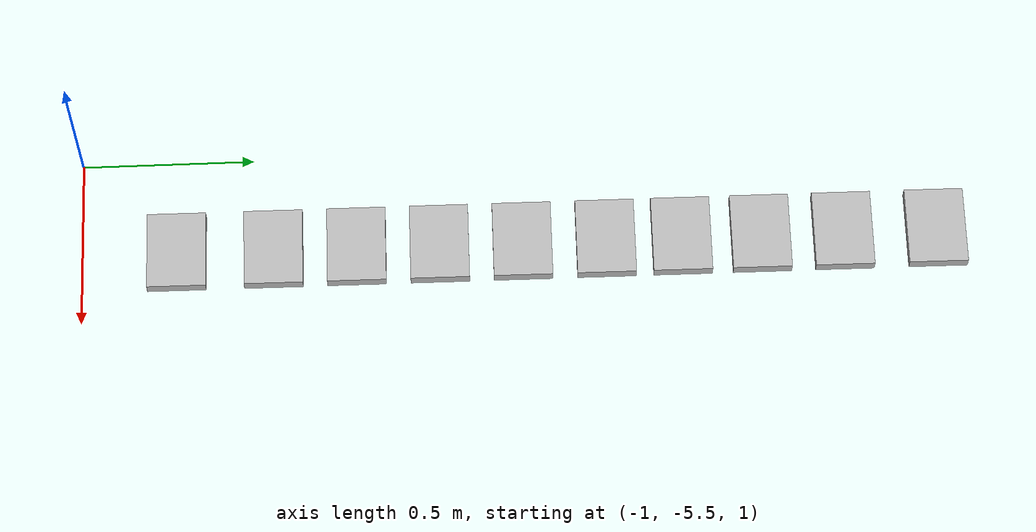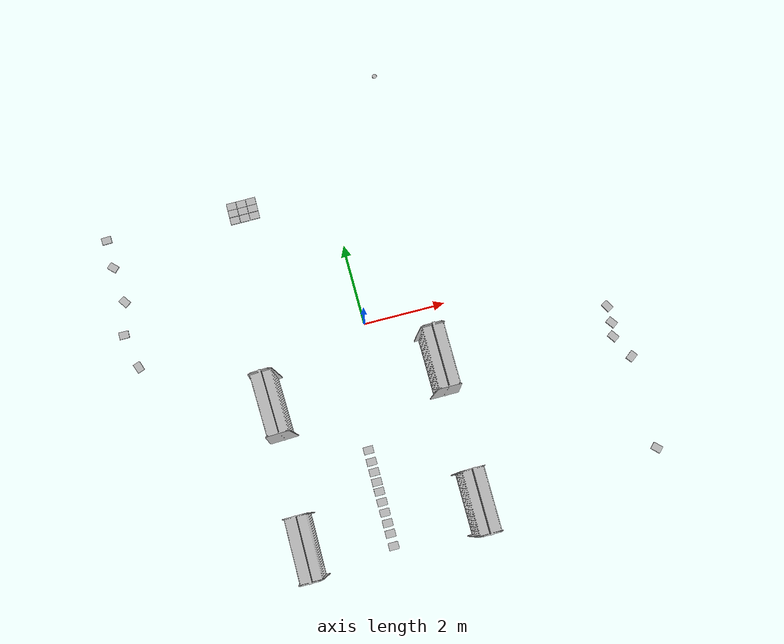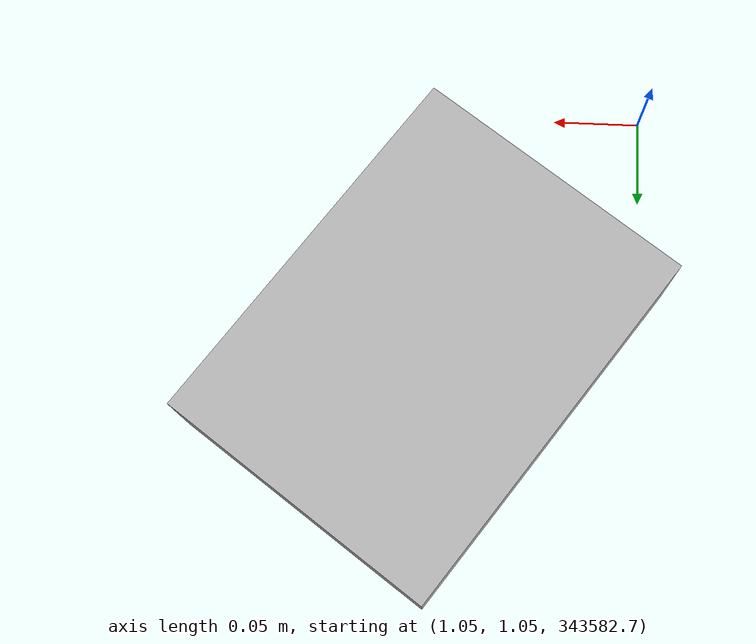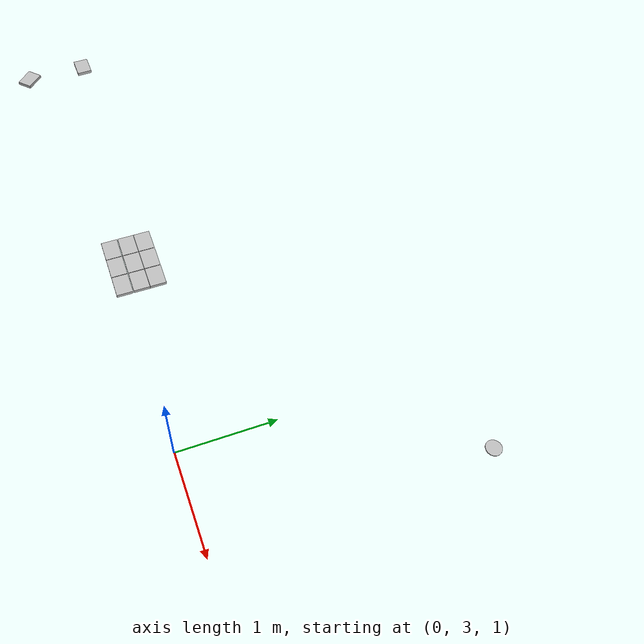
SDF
<sdf version="1.6">
 <world name="collision_test">
  <gravity>0 0 -9.8</gravity>
  <magnetic_field>6e-06 2.3e-05 -4.2e-05</magnetic_field>
  <atmosphere type="adiabatic"/>
  <physics default="0" name="default_physics" type="ode">
   <max_step_size>0.001</max_step_size>
   <real_time_factor>1</real_time_factor>
   <real_time_update_rate>1000</real_time_update_rate>
  </physics>
  <plugin name="gz::sim::systems::Physics" filename="gz-sim-physics-system"/>
  <plugin name="gz::sim::systems::UserCommands" filename="gz-sim-user-commands-system"/>
  <plugin name="gz::sim::systems::SceneBroadcaster" filename="gz-sim-scene-broadcaster-system"/>
  <plugin filename="gz-sim-sensors-system" name="gz::sim::systems::Sensors">
   <render_engine>ogre2</render_engine>
  </plugin>
  <plugin filename="gz-sim-contact-system" name="gz::sim::systems::Contact"/>
  <scene>
   <ambient>0.4 0.4 0.4 1</ambient>
   <background>0.7 0.7 0.7 1</background>
   <shadows>1</shadows>
   <grid>false</grid>
   <origin_visual>false</origin_visual>
  </scene>
  <spherical_coordinates>
   <surface_model>EARTH_WGS84</surface_model>
   <latitude_deg>0</latitude_deg>
   <longitude_deg>0</longitude_deg>
   <elevation>0</elevation>
   <heading_deg>0</heading_deg>
  </spherical_coordinates>
  <model name="sky_cam">
   <static>true</static>
   <link name="camera_link">
    <pose>0 0 18 1.57 1.57 0</pose>
    <sensor name="sky_cam" type="camera">
     <camera>
      <horizontal_fov>1.047</horizontal_fov>
      <image><width>1024</width><height>768</height></image>
      <clip><near>0.1</near><far>100</far></clip>
     </camera>
     <always_on>1</always_on>
     <update_rate>1</update_rate>
     <visualize>true</visualize>
     <topic>sky_cam</topic>
    </sensor>
   </link>
  </model>
  <model name="BookE_01_001">
   <static>true</static>
   <include><uri>models/aws_robomaker_retail_BookE_01</uri></include>
   <pose>5.476534 -1.932532 0.948933 0.000004 0.000001 -2.543521</pose>
  </model>
  <model name="BookE_01_002">
   <static>true</static>
   <include><uri>models/aws_robomaker_retail_BookE_01</uri></include>
   <pose>-5.414000 3.330672 0.934015 -0.000001 -0.000001 -1.541094</pose>
  </model>
  <model name="BookE_01_003">
   <static>true</static>
   <include><uri>models/aws_robomaker_retail_BookE_01</uri></include>
   <pose>5.552553 -1.214211 0.948933 0.000004 -0.000001 -2.654312</pose>
  </model>
  <model name="BookE_01_004">
   <static>true</static>
   <include><uri>models/aws_robomaker_retail_BookE_01</uri></include>
   <pose>5.677231 -4.649203 0.946394 0.000100 0.000006 -2.355752</pose>
  </model>
  <model name="BookE_01_005">
   <static>true</static>
   <include><uri>models/aws_robomaker_retail_BookE_01</uri></include>
   <pose>5.538150 -1.610317 0.948933 0 0 -2.526901</pose>
  </model>
  <model name="BookE_01_006">
   <static>true</static>
   <include><uri>models/aws_robomaker_retail_BookE_01</uri></include>
   <pose>-1.889425 3.346395 1.054941 0 0 1.568157</pose>
  </model>
  <model name="BookE_01_007">
   <static>true</static>
   <include><uri>models/aws_robomaker_retail_BookE_01</uri></include>
   <pose>-2.123726 3.346395 1.054941 0 0 1.568157</pose>
  </model>
  <model name="BookE_01_008">
   <static>true</static>
   <include><uri>models/aws_robomaker_retail_BookE_01</uri></include>
   <pose>-5.315121 1.771952 0.955242 3.141243 -0.072268 -2.526906</pose>
  </model>
  <model name="BookE_01_009">
   <static>true</static>
   <include><uri>models/aws_robomaker_retail_BookE_01</uri></include>
   <pose>1.170199 1.196251 343582.718718 0.002241 -0.001100 -0.623328</pose>
  </model>
  <model name="BookE_01_010">
   <static>true</static>
   <include><uri>models/aws_robomaker_retail_BookE_01</uri></include>
   <pose>-5.503415 1.012063 0.941463 0 0 -1.568440</pose>
  </model>
  <model name="BookE_01_011">
   <static>true</static>
   <include><uri>models/aws_robomaker_retail_BookE_01</uri></include>
   <pose>5.749231 -2.492018 0.948933 0.000002 0.000001 2.223394</pose>
  </model>
  <model name="BookE_01_012">
   <static>true</static>
   <include><uri>models/aws_robomaker_retail_BookE_01</uri></include>
   <pose>-5.333584 0.186186 0.949316 -0.000001 -0.004549 -2.798485</pose>
  </model>
  <model name="BookE_01_013">
   <static>true</static>
   <include><uri>models/aws_robomaker_retail_BookE_01</uri></include>
   <pose>-5.403906 2.650881 0.931119 0.021204 -0.000001 -2.355751</pose>
  </model>
  <model name="BookE_01_014">
   <static>true</static>
   <include><uri>models/aws_robomaker_retail_BookE_01</uri></include>
   <pose>-1.889425 2.993687 1.054941 0 0 1.568157</pose>
  </model>
  <model name="BookE_01_015">
   <static>true</static>
   <include><uri>models/aws_robomaker_retail_BookE_01</uri></include>
   <pose>-2.123726 2.993687 1.054941 0 0 1.568157</pose>
  </model>
  <model name="BookE_01_016">
   <static>true</static>
   <include><uri>models/aws_robomaker_retail_BookE_01</uri></include>
   <pose>-2.357369 2.993687 1.054941 0 0 1.568157</pose>
  </model>
  <model name="BookE_01_017">
   <static>true</static>
   <include><uri>models/aws_robomaker_retail_BookE_01</uri></include>
   <pose>-1.889425 3.172920 1.054941 0 0 1.568157</pose>
  </model>
  <model name="BookE_01_018">
   <static>true</static>
   <include><uri>models/aws_robomaker_retail_BookE_01</uri></include>
   <pose>-2.123726 3.172920 1.054941 0 0 1.568157</pose>
  </model>
  <model name="BookE_01_019">
   <static>true</static>
   <include><uri>models/aws_robomaker_retail_BookE_01</uri></include>
   <pose>-2.357369 3.172920 1.054941 0 0 1.568157</pose>
  </model>
  <model name="BookE_01_020">
   <static>true</static>
   <include><uri>models/aws_robomaker_retail_BookE_01</uri></include>
   <pose>-0.694312 -3.530823 1.053825 0.000004 -0.000004 -1.573382</pose>
  </model>
  <model name="BookE_01_021">
   <static>true</static>
   <include><uri>models/aws_robomaker_retail_BookE_01</uri></include>
   <pose>-0.694312 -3.760511 1.053825 0.000004 -0.000004 -1.573382</pose>
  </model>
  <model name="BookE_01_022">
   <static>true</static>
   <include><uri>models/aws_robomaker_retail_BookE_01</uri></include>
   <pose>-0.694312 -3.980472 1.053825 0.000004 -0.000004 -1.573382</pose>
  </model>
  <model name="BookE_01_023">
   <static>true</static>
   <include><uri>models/aws_robomaker_retail_BookE_01</uri></include>
   <pose>-0.694312 -4.221891 1.053825 0.000004 -0.000004 -1.573382</pose>
  </model>
  <model name="BookE_01_024">
   <static>true</static>
   <include><uri>models/aws_robomaker_retail_BookE_01</uri></include>
   <pose>-0.694312 -4.461891 1.053825 0.000004 -0.000004 -1.573382</pose>
  </model>
  <model name="BookE_01_025">
   <static>true</static>
   <include><uri>models/aws_robomaker_retail_BookE_01</uri></include>
   <pose>-0.694312 -4.701891 1.053825 0.000004 -0.000004 -1.573382</pose>
  </model>
  <model name="BookE_01_026">
   <static>true</static>
   <include><uri>models/aws_robomaker_retail_BookE_01</uri></include>
   <pose>-0.694312 -4.941891 1.053825 0.000004 -0.000004 -1.573382</pose>
  </model>
  <model name="BookE_01_027">
   <static>true</static>
   <include><uri>models/aws_robomaker_retail_BookE_01</uri></include>
   <pose>-0.694312 -5.221891 1.053825 0.000004 -0.000004 -1.573382</pose>
  </model>
  <model name="BookE_01_028">
   <static>true</static>
   <include><uri>models/aws_robomaker_retail_BookE_01</uri></include>
   <pose>-0.694312 -3.291891 1.053825 0.000004 -0.000004 -1.573382</pose>
  </model>
  <model name="BookE_01_029">
   <static>true</static>
   <include><uri>models/aws_robomaker_retail_BookE_01</uri></include>
   <pose>-0.694312 -3.021891 1.053825 0.000004 -0.000004 -1.573382</pose>
  </model>
  <model name="BookE_01_030">
   <static>true</static>
   <include><uri>models/aws_robomaker_retail_BookE_01</uri></include>
   <pose>-2.357369 3.346395 1.054941 0 0 1.568157</pose>
  </model>
  <model name="BookshelfA_01_001">
   <static>true</static>
   <include><uri>models/aws_robomaker_retail_BookshelfA_01</uri></include>
   <pose>1.405153 -1.449740 0.03755 0.003490 -0.000003 0.000696</pose>
  </model>
  <model name="BookshelfA_01_002">
   <static>true</static>
   <include><uri>models/aws_robomaker_retail_BookshelfA_01</uri></include>
   <pose>1.405153 -4.761649 0.003411 0 0 0</pose>
  </model>
  <model name="BookshelfA_01_003">
   <static>true</static>
   <include><uri>models/aws_robomaker_retail_BookshelfA_01</uri></include>
   <pose>-2.554493 -1.487456 0.006337 0.001313 -0.001987 0.031824</pose>
  </model>
  <model name="BookshelfA_01_004">
   <static>true</static>
   <include><uri>models/aws_robomaker_retail_BookshelfA_01</uri></include>
   <pose>-2.608578 -4.761649 0.003411 0 0 0</pose>
  </model>
  <model name="Spotlight_01_001">
   <static>true</static>
   <include><uri>models/aws_robomaker_retail_Spotlight_01</uri></include>
   <pose>1.493200 4.692372 3.302658 0 -0 0</pose>
  </model>
  <light name="RetailShop_CeilingLight_001" type="point">
   <pose>2.774418 -3.628150 3.178466 0 -0 0</pose>
   <diffuse>0.5 0.5 0.5 1</diffuse>
   <specular>0.1 0.1 0.1 1</specular>
   <attenuation>
    <range>20</range>
    <constant>0.32</constant>
    <linear>0.01</linear>
    <quadratic>0.03</quadratic>
   </attenuation>
   <cast_shadows>0</cast_shadows>
   <direction>0 0 -1</direction>
  </light>
  <light name="RetailShop_CeilingLight_002" type="point">
   <pose>5.383991 -5.383710 3.178466 0 -0 0</pose>
   <diffuse>0.5 0.5 0.5 1</diffuse>
   <specular>0.1 0.1 0.1 1</specular>
   <attenuation>
    <range>20</range>
    <constant>0.32</constant>
    <linear>0.01</linear>
    <quadratic>0.03</quadratic>
   </attenuation>
   <cast_shadows>0</cast_shadows>
   <direction>0 0 -1</direction>
  </light>
  <light name="RetailShop_CeilingLight_003" type="point">
   <pose>5.383991 0.041920 3.178466 0 -0 0</pose>
   <diffuse>0.5 0.5 0.5 1</diffuse>
   <specular>0.1 0.1 0.1 1</specular>
   <attenuation>
    <range>20</range>
    <constant>0.32</constant>
    <linear>0.01</linear>
    <quadratic>0.03</quadratic>
   </attenuation>
   <cast_shadows>0</cast_shadows>
   <direction>0 0 -1</direction>
  </light>
  <light name="RetailShop_CeilingLight_004" type="point">
   <pose>-3.210668 -5.383710 3.178466 0 -0 0</pose>
   <diffuse>0.5 0.5 0.5 1</diffuse>
   <specular>0.1 0.1 0.1 1</specular>
   <attenuation>
    <range>20</range>
    <constant>0.32</constant>
    <linear>0.01</linear>
    <quadratic>0.03</quadratic>
   </attenuation>
   <cast_shadows>0</cast_shadows>
   <direction>0 0 -1</direction>
  </light>
  <light name="RetailShop_CeilingLight_005" type="point">
   <pose>-3.271001 2.685925 3.178466 0 -0 0</pose>
   <diffuse>0.5 0.5 0.5 1</diffuse>
   <specular>0.1 0.1 0.1 1</specular>
   <attenuation>
    <range>20</range>
    <constant>0.32</constant>
    <linear>0.01</linear>
    <quadratic>0.03</quadratic>
   </attenuation>
   <cast_shadows>0</cast_shadows>
   <direction>0 0 -1</direction>
  </light>
  <light name="RetailShop_CeilingLight_006" type="point">
   <pose>1.493200 4.692372 3.178466 0 -0 0</pose>
   <diffuse>0.5 0.5 0.5 1</diffuse>
   <specular>0.1 0.1 0.1 1</specular>
   <attenuation>
    <range>20</range>
    <constant>0.32</constant>
    <linear>0.01</linear>
    <quadratic>0.03</quadratic>
   </attenuation>
   <cast_shadows>0</cast_shadows>
   <direction>0 0 -1</direction>
  </light>
 </world>
</sdf>

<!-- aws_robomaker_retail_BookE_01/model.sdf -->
<sdf version="1.6">
  <model name="aws_robomaker_retail_BookE_01">
    <link name="link">
      <inertial>
        <mass>1</mass>
        <inertia>
          <ixy>0</ixy>
          <ixz>0</ixz>
          <iyz>0</iyz>
          <ixx>0.0666</ixx>
          <iyy>0.0346</iyy>
          <izz>0.0986</izz>
        </inertia>
      </inertial>
      <collision name="collision">
        <geometry>
          <mesh>
		  <uri>file://models/aws_robomaker_retail_BookE_01/meshes/aws_BookE_01_collision.DAE</uri>
            <scale>1 1 1</scale>
          </mesh>
        </geometry>
      </collision>
      <visual name="visual">
	    <geometry>
          <mesh>
		  <uri>file://models/aws_robomaker_retail_BookE_01/meshes/aws_BookE_01_visual.DAE</uri>
          </mesh>
        </geometry>
        <meta>
          <layer>1</layer>
        </meta>
      </visual>
    </link>
    <!-- Keeping this book model static to keep the
         scene composition until physics is stabilized-->
    <static>1</static>
  </model>
</sdf>

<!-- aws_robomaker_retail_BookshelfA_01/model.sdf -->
<sdf version="1.6">
  <model name="aws_robomaker_retail_BookshelfA_01">
    <link name="link">
      <inertial>
        <mass>50</mass>
        <inertia>
          <ixx>27.734059</ixx>
          <ixy>0</ixy>
          <ixz>0</ixz>
          <iyy>20.9360858</iyy>
          <iyz>0</iyz>
          <izz>11.359616</izz>
        </inertia>
      </inertial>
      <collision name="collision">
        <geometry>
          <mesh>
            <uri>model://models/aws_robomaker_retail_BookshelfA_01/meshes/aws_BookshelfA_01_collision.DAE</uri>
            <scale>1 1 1</scale>
          </mesh>
        </geometry>
      </collision>
      <visual name="visual">
	    <geometry>
          <mesh>
            <uri>model://models/aws_robomaker_retail_BookshelfA_01/meshes/aws_BookshelfA_01_visual.DAE</uri>
          </mesh>
        </geometry>
        <meta>
          <layer>1</layer>
        </meta>
      </visual>
    </link>
  <static>1</static>
  </model>
</sdf>

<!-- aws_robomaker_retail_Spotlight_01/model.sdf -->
<sdf version="1.6">
  <model name="aws_robomaker_retail_Spotlight_01">
    <link name="link">
      <inertial>
        <mass>1</mass>
      </inertial>
      <collision name="collision">
        <geometry>
          <mesh>
            <uri>file://models/aws_robomaker_retail_Spotlight_01/meshes/aws_spotlight_01_collision.DAE</uri>
            <scale>1 1 1</scale>
          </mesh>
        </geometry>
      </collision>
      <visual name="visual">
	    <geometry>
          <mesh>
            <uri>file://models/aws_robomaker_retail_Spotlight_01/meshes/aws_spotlight_01_visual.DAE</uri>
          </mesh>
        </geometry>
        <meta>
          <layer>3</layer>
        </meta>
      </visual>
    </link>
	<static>1</static>
  </model>
</sdf>
